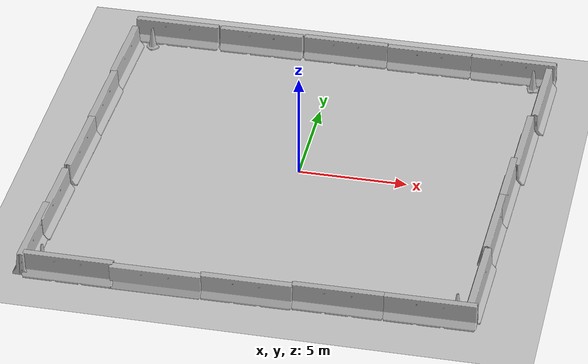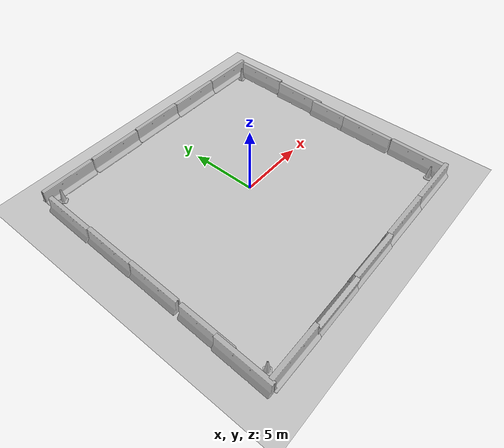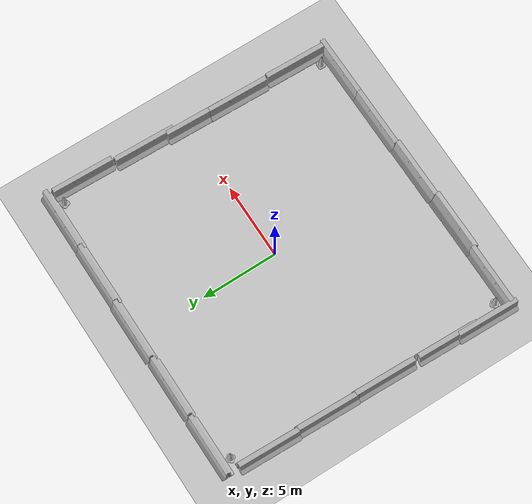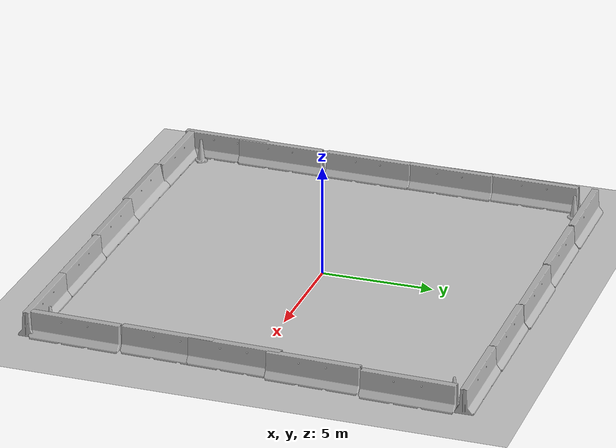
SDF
<sdf version="1.6">
 <world name="default">
  <light name="sun" type="directional">
   <pose>0 0 10 0 -0 0</pose>
   <diffuse>0.8 0.8 0.8 1</diffuse>
   <specular>0.2 0.2 0.2 1</specular>
   <attenuation>
    <range>1000</range>
    <constant>0.9</constant>
    <linear>0.01</linear>
    <quadratic>0.001</quadratic>
   </attenuation>
   <direction>-0.5 0.1 -0.9</direction>
  </light>
  <model name="ground_plane">
   <static>1</static>
   <link name="link">
    <collision name="collision">
     <geometry><plane><normal>0 0 1</normal><size>100 100</size></plane></geometry>
     <surface>
      <contact><collide_bitmask>65535</collide_bitmask></contact>
      <friction><ode><mu>100</mu><mu2>50</mu2></ode></friction>
     </surface>
    </collision>
    <visual name="visual">
     <cast_shadows>0</cast_shadows>
     <geometry><plane><normal>0 0 1</normal><size>100 100</size></plane></geometry>
     <material>
      <script><uri>file://media/materials/scripts/gazebo.material</uri><name>Gazebo/Grey</name></script>
     </material>
    </visual>
   </link>
  </model>
  <gravity>0 0 -9.8</gravity>
  <magnetic_field>6e-06 2.3e-05 -4.2e-05</magnetic_field>
  <atmosphere type="adiabatic"/>
  <physics name="default_physics" default="0" type="ode">
   <max_step_size>0.001</max_step_size>
   <real_time_factor>1</real_time_factor>
   <real_time_update_rate>1000</real_time_update_rate>
  </physics>
  <scene><ambient>0.4 0.4 0.4 1</ambient><background>0.7 0.7 0.7 1</background><shadows>1</shadows></scene>
  <audio><device>default</device></audio>
  <spherical_coordinates>
   <surface_model>EARTH_WGS84</surface_model>
   <latitude_deg>0</latitude_deg>
   <longitude_deg>0</longitude_deg>
   <elevation>0</elevation>
   <heading_deg>0</heading_deg>
  </spherical_coordinates>
  <model name="jersey_barrier">
   <static>1</static>
   <link name="link">
    <visual name="visual">
     <geometry><mesh><uri>model://jersey_barrier/meshes/jersey_barrier.dae</uri></mesh></geometry>
    </visual>
    <collision name="upright">
     <pose>0 0 0.5715 0 -0 0</pose>
     <geometry><box><size>4.06542 0.3063 1.143</size></box></geometry>
    </collision>
    <collision name="base">
     <pose>0 0 0.032258 0 -0 0</pose>
     <geometry><box><size>4.06542 0.8107 0.064516</size></box></geometry>
    </collision>
    <collision name="base2">
     <pose>0 0 0.1 0 -0 0</pose>
     <geometry><box><size>4.06542 0.65 0.1</size></box></geometry>
    </collision>
    <collision name="base3">
     <pose>0 0 0.2 0 -0 0</pose>
     <geometry><box><size>4.06542 0.5 0.1</size></box></geometry>
    </collision>
    <collision name="left-angle">
     <pose>0 -0.224 0.2401 0.9 -0 0</pose>
     <geometry><box><size>4.06542 0.5 0.064516</size></box></geometry>
    </collision>
    <collision name="right-angle">
     <pose>0 0.224 0.2401 -0.9 0 0</pose>
     <geometry><box><size>4.06542 0.5 0.064516</size></box></geometry>
    </collision>
   </link>
   <pose>-9.91803 2.78496 -0.000444 0 0.000222 -1.5949</pose>
  </model>
  <model name="jersey_barrier_clone">
   <static>1</static>
   <link name="link">
    <visual name="visual">
     <geometry><mesh><uri>model://jersey_barrier/meshes/jersey_barrier.dae</uri></mesh></geometry>
    </visual>
    <collision name="upright">
     <pose>0 0 0.5715 0 -0 0</pose>
     <geometry><box><size>4.06542 0.3063 1.143</size></box></geometry>
    </collision>
    <collision name="base">
     <pose>0 0 0.032258 0 -0 0</pose>
     <geometry><box><size>4.06542 0.8107 0.064516</size></box></geometry>
    </collision>
    <collision name="base2">
     <pose>0 0 0.1 0 -0 0</pose>
     <geometry><box><size>4.06542 0.65 0.1</size></box></geometry>
    </collision>
    <collision name="base3">
     <pose>0 0 0.2 0 -0 0</pose>
     <geometry><box><size>4.06542 0.5 0.1</size></box></geometry>
    </collision>
    <collision name="left-angle">
     <pose>0 -0.224 0.2401 0.9 -0 0</pose>
     <geometry><box><size>4.06542 0.5 0.064516</size></box></geometry>
    </collision>
    <collision name="right-angle">
     <pose>0 0.224 0.2401 -0.9 0 0</pose>
     <geometry><box><size>4.06542 0.5 0.064516</size></box></geometry>
    </collision>
   </link>
   <pose>-4.27894 -9.82924 -0.007857 -0.174297 0.000664 -3.13654</pose>
  </model>
  <model name="jersey_barrier_clone_0">
   <static>1</static>
   <link name="link">
    <visual name="visual">
     <geometry><mesh><uri>model://jersey_barrier/meshes/jersey_barrier.dae</uri></mesh></geometry>
    </visual>
    <collision name="upright">
     <pose>0 0 0.5715 0 -0 0</pose>
     <geometry><box><size>4.06542 0.3063 1.143</size></box></geometry>
    </collision>
    <collision name="base">
     <pose>0 0 0.032258 0 -0 0</pose>
     <geometry><box><size>4.06542 0.8107 0.064516</size></box></geometry>
    </collision>
    <collision name="base2">
     <pose>0 0 0.1 0 -0 0</pose>
     <geometry><box><size>4.06542 0.65 0.1</size></box></geometry>
    </collision>
    <collision name="base3">
     <pose>0 0 0.2 0 -0 0</pose>
     <geometry><box><size>4.06542 0.5 0.1</size></box></geometry>
    </collision>
    <collision name="left-angle">
     <pose>0 -0.224 0.2401 0.9 -0 0</pose>
     <geometry><box><size>4.06542 0.5 0.064516</size></box></geometry>
    </collision>
    <collision name="right-angle">
     <pose>0 0.224 0.2401 -0.9 0 0</pose>
     <geometry><box><size>4.06542 0.5 0.064516</size></box></geometry>
    </collision>
   </link>
   <pose>3.73083 -9.7443 -0.000445 0 -0.000222 0.00509</pose>
  </model>
  <model name="jersey_barrier_clone_1">
   <static>1</static>
   <link name="link">
    <visual name="visual">
     <geometry><mesh><uri>model://jersey_barrier/meshes/jersey_barrier.dae</uri></mesh></geometry>
    </visual>
    <collision name="upright">
     <pose>0 0 0.5715 0 -0 0</pose>
     <geometry><box><size>4.06542 0.3063 1.143</size></box></geometry>
    </collision>
    <collision name="base">
     <pose>0 0 0.032258 0 -0 0</pose>
     <geometry><box><size>4.06542 0.8107 0.064516</size></box></geometry>
    </collision>
    <collision name="base2">
     <pose>0 0 0.1 0 -0 0</pose>
     <geometry><box><size>4.06542 0.65 0.1</size></box></geometry>
    </collision>
    <collision name="base3">
     <pose>0 0 0.2 0 -0 0</pose>
     <geometry><box><size>4.06542 0.5 0.1</size></box></geometry>
    </collision>
    <collision name="left-angle">
     <pose>0 -0.224 0.2401 0.9 -0 0</pose>
     <geometry><box><size>4.06542 0.5 0.064516</size></box></geometry>
    </collision>
    <collision name="right-angle">
     <pose>0 0.224 0.2401 -0.9 0 0</pose>
     <geometry><box><size>4.06542 0.5 0.064516</size></box></geometry>
    </collision>
   </link>
   <pose>-0.274057 -9.78695 -0.002748 -0.087019 0.000444 -3.13651</pose>
  </model>
  <model name="jersey_barrier_clone_2">
   <static>1</static>
   <link name="link">
    <visual name="visual">
     <geometry><mesh><uri>model://jersey_barrier/meshes/jersey_barrier.dae</uri></mesh></geometry>
    </visual>
    <collision name="upright">
     <pose>0 0 0.5715 0 -0 0</pose>
     <geometry><box><size>4.06542 0.3063 1.143</size></box></geometry>
    </collision>
    <collision name="base">
     <pose>0 0 0.032258 0 -0 0</pose>
     <geometry><box><size>4.06542 0.8107 0.064516</size></box></geometry>
    </collision>
    <collision name="base2">
     <pose>0 0 0.1 0 -0 0</pose>
     <geometry><box><size>4.06542 0.65 0.1</size></box></geometry>
    </collision>
    <collision name="base3">
     <pose>0 0 0.2 0 -0 0</pose>
     <geometry><box><size>4.06542 0.5 0.1</size></box></geometry>
    </collision>
    <collision name="left-angle">
     <pose>0 -0.224 0.2401 0.9 -0 0</pose>
     <geometry><box><size>4.06542 0.5 0.064516</size></box></geometry>
    </collision>
    <collision name="right-angle">
     <pose>0 0.224 0.2401 -0.9 0 0</pose>
     <geometry><box><size>4.06542 0.5 0.064516</size></box></geometry>
    </collision>
   </link>
   <pose>7.73583 -9.72394 0 0 -0 0.005079</pose>
  </model>
  <model name="jersey_barrier_clone_3">
   <static>1</static>
   <link name="link">
    <visual name="visual">
     <geometry><mesh><uri>model://jersey_barrier/meshes/jersey_barrier.dae</uri></mesh></geometry>
    </visual>
    <collision name="upright">
     <pose>0 0 0.5715 0 -0 0</pose>
     <geometry><box><size>4.06542 0.3063 1.143</size></box></geometry>
    </collision>
    <collision name="base">
     <pose>0 0 0.032258 0 -0 0</pose>
     <geometry><box><size>4.06542 0.8107 0.064516</size></box></geometry>
    </collision>
    <collision name="base2">
     <pose>0 0 0.1 0 -0 0</pose>
     <geometry><box><size>4.06542 0.65 0.1</size></box></geometry>
    </collision>
    <collision name="base3">
     <pose>0 0 0.2 0 -0 0</pose>
     <geometry><box><size>4.06542 0.5 0.1</size></box></geometry>
    </collision>
    <collision name="left-angle">
     <pose>0 -0.224 0.2401 0.9 -0 0</pose>
     <geometry><box><size>4.06542 0.5 0.064516</size></box></geometry>
    </collision>
    <collision name="right-angle">
     <pose>0 0.224 0.2401 -0.9 0 0</pose>
     <geometry><box><size>4.06542 0.5 0.064516</size></box></geometry>
    </collision>
   </link>
   <pose>-9.88264 6.79032 -0 0 0 -1.5949</pose>
  </model>
  <model name="jersey_barrier_clone_4">
   <static>1</static>
   <link name="link">
    <visual name="visual">
     <geometry><mesh><uri>model://jersey_barrier/meshes/jersey_barrier.dae</uri></mesh></geometry>
    </visual>
    <collision name="upright">
     <pose>0 0 0.5715 0 -0 0</pose>
     <geometry><box><size>4.06542 0.3063 1.143</size></box></geometry>
    </collision>
    <collision name="base">
     <pose>0 0 0.032258 0 -0 0</pose>
     <geometry><box><size>4.06542 0.8107 0.064516</size></box></geometry>
    </collision>
    <collision name="base2">
     <pose>0 0 0.1 0 -0 0</pose>
     <geometry><box><size>4.06542 0.65 0.1</size></box></geometry>
    </collision>
    <collision name="base3">
     <pose>0 0 0.2 0 -0 0</pose>
     <geometry><box><size>4.06542 0.5 0.1</size></box></geometry>
    </collision>
    <collision name="left-angle">
     <pose>0 -0.224 0.2401 0.9 -0 0</pose>
     <geometry><box><size>4.06542 0.5 0.064516</size></box></geometry>
    </collision>
    <collision name="right-angle">
     <pose>0 0.224 0.2401 -0.9 0 0</pose>
     <geometry><box><size>4.06542 0.5 0.064516</size></box></geometry>
    </collision>
   </link>
   <pose>-7.90592 9.55444 0 0 -0 0</pose>
  </model>
  <model name="jersey_barrier_clone_5">
   <static>1</static>
   <link name="link">
    <visual name="visual">
     <geometry><mesh><uri>model://jersey_barrier/meshes/jersey_barrier.dae</uri></mesh></geometry>
    </visual>
    <collision name="upright">
     <pose>0 0 0.5715 0 -0 0</pose>
     <geometry><box><size>4.06542 0.3063 1.143</size></box></geometry>
    </collision>
    <collision name="base">
     <pose>0 0 0.032258 0 -0 0</pose>
     <geometry><box><size>4.06542 0.8107 0.064516</size></box></geometry>
    </collision>
    <collision name="base2">
     <pose>0 0 0.1 0 -0 0</pose>
     <geometry><box><size>4.06542 0.65 0.1</size></box></geometry>
    </collision>
    <collision name="base3">
     <pose>0 0 0.2 0 -0 0</pose>
     <geometry><box><size>4.06542 0.5 0.1</size></box></geometry>
    </collision>
    <collision name="left-angle">
     <pose>0 -0.224 0.2401 0.9 -0 0</pose>
     <geometry><box><size>4.06542 0.5 0.064516</size></box></geometry>
    </collision>
    <collision name="right-angle">
     <pose>0 0.224 0.2401 -0.9 0 0</pose>
     <geometry><box><size>4.06542 0.5 0.064516</size></box></geometry>
    </collision>
   </link>
   <pose>-3.76537 9.54052 0 0 -0 0</pose>
  </model>
  <model name="jersey_barrier_clone_6">
   <static>1</static>
   <link name="link">
    <visual name="visual">
     <geometry><mesh><uri>model://jersey_barrier/meshes/jersey_barrier.dae</uri></mesh></geometry>
    </visual>
    <collision name="upright">
     <pose>0 0 0.5715 0 -0 0</pose>
     <geometry><box><size>4.06542 0.3063 1.143</size></box></geometry>
    </collision>
    <collision name="base">
     <pose>0 0 0.032258 0 -0 0</pose>
     <geometry><box><size>4.06542 0.8107 0.064516</size></box></geometry>
    </collision>
    <collision name="base2">
     <pose>0 0 0.1 0 -0 0</pose>
     <geometry><box><size>4.06542 0.65 0.1</size></box></geometry>
    </collision>
    <collision name="base3">
     <pose>0 0 0.2 0 -0 0</pose>
     <geometry><box><size>4.06542 0.5 0.1</size></box></geometry>
    </collision>
    <collision name="left-angle">
     <pose>0 -0.224 0.2401 0.9 -0 0</pose>
     <geometry><box><size>4.06542 0.5 0.064516</size></box></geometry>
    </collision>
    <collision name="right-angle">
     <pose>0 0.224 0.2401 -0.9 0 0</pose>
     <geometry><box><size>4.06542 0.5 0.064516</size></box></geometry>
    </collision>
   </link>
   <pose>0.347506 9.59827 0 0 -0 0</pose>
  </model>
  <model name="jersey_barrier_clone_7">
   <static>1</static>
   <link name="link">
    <visual name="visual">
     <geometry><mesh><uri>model://jersey_barrier/meshes/jersey_barrier.dae</uri></mesh></geometry>
    </visual>
    <collision name="upright">
     <pose>0 0 0.5715 0 -0 0</pose>
     <geometry><box><size>4.06542 0.3063 1.143</size></box></geometry>
    </collision>
    <collision name="base">
     <pose>0 0 0.032258 0 -0 0</pose>
     <geometry><box><size>4.06542 0.8107 0.064516</size></box></geometry>
    </collision>
    <collision name="base2">
     <pose>0 0 0.1 0 -0 0</pose>
     <geometry><box><size>4.06542 0.65 0.1</size></box></geometry>
    </collision>
    <collision name="base3">
     <pose>0 0 0.2 0 -0 0</pose>
     <geometry><box><size>4.06542 0.5 0.1</size></box></geometry>
    </collision>
    <collision name="left-angle">
     <pose>0 -0.224 0.2401 0.9 -0 0</pose>
     <geometry><box><size>4.06542 0.5 0.064516</size></box></geometry>
    </collision>
    <collision name="right-angle">
     <pose>0 0.224 0.2401 -0.9 0 0</pose>
     <geometry><box><size>4.06542 0.5 0.064516</size></box></geometry>
    </collision>
   </link>
   <pose>4.40612 9.53908 0 0 -0 0</pose>
  </model>
  <model name="jersey_barrier_clone_8">
   <static>1</static>
   <link name="link">
    <visual name="visual">
     <geometry><mesh><uri>model://jersey_barrier/meshes/jersey_barrier.dae</uri></mesh></geometry>
    </visual>
    <collision name="upright">
     <pose>0 0 0.5715 0 -0 0</pose>
     <geometry><box><size>4.06542 0.3063 1.143</size></box></geometry>
    </collision>
    <collision name="base">
     <pose>0 0 0.032258 0 -0 0</pose>
     <geometry><box><size>4.06542 0.8107 0.064516</size></box></geometry>
    </collision>
    <collision name="base2">
     <pose>0 0 0.1 0 -0 0</pose>
     <geometry><box><size>4.06542 0.65 0.1</size></box></geometry>
    </collision>
    <collision name="base3">
     <pose>0 0 0.2 0 -0 0</pose>
     <geometry><box><size>4.06542 0.5 0.1</size></box></geometry>
    </collision>
    <collision name="left-angle">
     <pose>0 -0.224 0.2401 0.9 -0 0</pose>
     <geometry><box><size>4.06542 0.5 0.064516</size></box></geometry>
    </collision>
    <collision name="right-angle">
     <pose>0 0.224 0.2401 -0.9 0 0</pose>
     <geometry><box><size>4.06542 0.5 0.064516</size></box></geometry>
    </collision>
   </link>
   <pose>8.45529 9.51154 0 0 -0 0</pose>
  </model>
  <model name="jersey_barrier_clone_9">
   <static>1</static>
   <link name="link">
    <visual name="visual">
     <geometry><mesh><uri>model://jersey_barrier/meshes/jersey_barrier.dae</uri></mesh></geometry>
    </visual>
    <collision name="upright">
     <pose>0 0 0.5715 0 -0 0</pose>
     <geometry><box><size>4.06542 0.3063 1.143</size></box></geometry>
    </collision>
    <collision name="base">
     <pose>0 0 0.032258 0 -0 0</pose>
     <geometry><box><size>4.06542 0.8107 0.064516</size></box></geometry>
    </collision>
    <collision name="base2">
     <pose>0 0 0.1 0 -0 0</pose>
     <geometry><box><size>4.06542 0.65 0.1</size></box></geometry>
    </collision>
    <collision name="base3">
     <pose>0 0 0.2 0 -0 0</pose>
     <geometry><box><size>4.06542 0.5 0.1</size></box></geometry>
    </collision>
    <collision name="left-angle">
     <pose>0 -0.224 0.2401 0.9 -0 0</pose>
     <geometry><box><size>4.06542 0.5 0.064516</size></box></geometry>
    </collision>
    <collision name="right-angle">
     <pose>0 0.224 0.2401 -0.9 0 0</pose>
     <geometry><box><size>4.06542 0.5 0.064516</size></box></geometry>
    </collision>
   </link>
   <pose>-8.20158 -9.87333 0 0 -0 0</pose>
  </model>
  <model name="jersey_barrier_clone_10">
   <static>1</static>
   <link name="link">
    <visual name="visual">
     <geometry><mesh><uri>model://jersey_barrier/meshes/jersey_barrier.dae</uri></mesh></geometry>
    </visual>
    <collision name="upright">
     <pose>0 0 0.5715 0 -0 0</pose>
     <geometry><box><size>4.06542 0.3063 1.143</size></box></geometry>
    </collision>
    <collision name="base">
     <pose>0 0 0.032258 0 -0 0</pose>
     <geometry><box><size>4.06542 0.8107 0.064516</size></box></geometry>
    </collision>
    <collision name="base2">
     <pose>0 0 0.1 0 -0 0</pose>
     <geometry><box><size>4.06542 0.65 0.1</size></box></geometry>
    </collision>
    <collision name="base3">
     <pose>0 0 0.2 0 -0 0</pose>
     <geometry><box><size>4.06542 0.5 0.1</size></box></geometry>
    </collision>
    <collision name="left-angle">
     <pose>0 -0.224 0.2401 0.9 -0 0</pose>
     <geometry><box><size>4.06542 0.5 0.064516</size></box></geometry>
    </collision>
    <collision name="right-angle">
     <pose>0 0.224 0.2401 -0.9 0 0</pose>
     <geometry><box><size>4.06542 0.5 0.064516</size></box></geometry>
    </collision>
   </link>
   <pose>9.51428 -7.56983 -0.002198 0 0.000222 -1.5949</pose>
  </model>
  <model name="jersey_barrier_clone_11">
   <static>1</static>
   <link name="link">
    <visual name="visual">
     <geometry><mesh><uri>model://jersey_barrier/meshes/jersey_barrier.dae</uri></mesh></geometry>
    </visual>
    <collision name="upright">
     <pose>0 0 0.5715 0 -0 0</pose>
     <geometry><box><size>4.06542 0.3063 1.143</size></box></geometry>
    </collision>
    <collision name="base">
     <pose>0 0 0.032258 0 -0 0</pose>
     <geometry><box><size>4.06542 0.8107 0.064516</size></box></geometry>
    </collision>
    <collision name="base2">
     <pose>0 0 0.1 0 -0 0</pose>
     <geometry><box><size>4.06542 0.65 0.1</size></box></geometry>
    </collision>
    <collision name="base3">
     <pose>0 0 0.2 0 -0 0</pose>
     <geometry><box><size>4.06542 0.5 0.1</size></box></geometry>
    </collision>
    <collision name="left-angle">
     <pose>0 -0.224 0.2401 0.9 -0 0</pose>
     <geometry><box><size>4.06542 0.5 0.064516</size></box></geometry>
    </collision>
    <collision name="right-angle">
     <pose>0 0.224 0.2401 -0.9 0 0</pose>
     <geometry><box><size>4.06542 0.5 0.064516</size></box></geometry>
    </collision>
   </link>
   <pose>-9.97822 -1.12582 -0.000444 0 0.000222 -1.5949</pose>
  </model>
  <model name="jersey_barrier_clone_12">
   <static>1</static>
   <link name="link">
    <visual name="visual">
     <geometry><mesh><uri>model://jersey_barrier/meshes/jersey_barrier.dae</uri></mesh></geometry>
    </visual>
    <collision name="upright">
     <pose>0 0 0.5715 0 -0 0</pose>
     <geometry><box><size>4.06542 0.3063 1.143</size></box></geometry>
    </collision>
    <collision name="base">
     <pose>0 0 0.032258 0 -0 0</pose>
     <geometry><box><size>4.06542 0.8107 0.064516</size></box></geometry>
    </collision>
    <collision name="base2">
     <pose>0 0 0.1 0 -0 0</pose>
     <geometry><box><size>4.06542 0.65 0.1</size></box></geometry>
    </collision>
    <collision name="base3">
     <pose>0 0 0.2 0 -0 0</pose>
     <geometry><box><size>4.06542 0.5 0.1</size></box></geometry>
    </collision>
    <collision name="left-angle">
     <pose>0 -0.224 0.2401 0.9 -0 0</pose>
     <geometry><box><size>4.06542 0.5 0.064516</size></box></geometry>
    </collision>
    <collision name="right-angle">
     <pose>0 0.224 0.2401 -0.9 0 0</pose>
     <geometry><box><size>4.06542 0.5 0.064516</size></box></geometry>
    </collision>
   </link>
   <pose>-10.0969 -5.4132 -0.000444 0 0.000222 -1.5949</pose>
  </model>
  <model name="jersey_barrier_clone_13">
   <static>1</static>
   <link name="link">
    <visual name="visual">
     <geometry><mesh><uri>model://jersey_barrier/meshes/jersey_barrier.dae</uri></mesh></geometry>
    </visual>
    <collision name="upright">
     <pose>0 0 0.5715 0 -0 0</pose>
     <geometry><box><size>4.06542 0.3063 1.143</size></box></geometry>
    </collision>
    <collision name="base">
     <pose>0 0 0.032258 0 -0 0</pose>
     <geometry><box><size>4.06542 0.8107 0.064516</size></box></geometry>
    </collision>
    <collision name="base2">
     <pose>0 0 0.1 0 -0 0</pose>
     <geometry><box><size>4.06542 0.65 0.1</size></box></geometry>
    </collision>
    <collision name="base3">
     <pose>0 0 0.2 0 -0 0</pose>
     <geometry><box><size>4.06542 0.5 0.1</size></box></geometry>
    </collision>
    <collision name="left-angle">
     <pose>0 -0.224 0.2401 0.9 -0 0</pose>
     <geometry><box><size>4.06542 0.5 0.064516</size></box></geometry>
    </collision>
    <collision name="right-angle">
     <pose>0 0.224 0.2401 -0.9 0 0</pose>
     <geometry><box><size>4.06542 0.5 0.064516</size></box></geometry>
    </collision>
   </link>
   <pose>9.53439 -3.45107 -0.000444 0 0.000222 -1.5949</pose>
  </model>
  <model name="jersey_barrier_clone_14">
   <static>1</static>
   <link name="link">
    <visual name="visual">
     <geometry><mesh><uri>model://jersey_barrier/meshes/jersey_barrier.dae</uri></mesh></geometry>
    </visual>
    <collision name="upright">
     <pose>0 0 0.5715 0 -0 0</pose>
     <geometry><box><size>4.06542 0.3063 1.143</size></box></geometry>
    </collision>
    <collision name="base">
     <pose>0 0 0.032258 0 -0 0</pose>
     <geometry><box><size>4.06542 0.8107 0.064516</size></box></geometry>
    </collision>
    <collision name="base2">
     <pose>0 0 0.1 0 -0 0</pose>
     <geometry><box><size>4.06542 0.65 0.1</size></box></geometry>
    </collision>
    <collision name="base3">
     <pose>0 0 0.2 0 -0 0</pose>
     <geometry><box><size>4.06542 0.5 0.1</size></box></geometry>
    </collision>
    <collision name="left-angle">
     <pose>0 -0.224 0.2401 0.9 -0 0</pose>
     <geometry><box><size>4.06542 0.5 0.064516</size></box></geometry>
    </collision>
    <collision name="right-angle">
     <pose>0 0.224 0.2401 -0.9 0 0</pose>
     <geometry><box><size>4.06542 0.5 0.064516</size></box></geometry>
    </collision>
   </link>
   <pose>10.1448 7.11225 -0.000444 0 0.000222 -1.5949</pose>
  </model>
  <model name="jersey_barrier_clone_15">
   <static>1</static>
   <link name="link">
    <visual name="visual">
     <geometry><mesh><uri>model://jersey_barrier/meshes/jersey_barrier.dae</uri></mesh></geometry>
    </visual>
    <collision name="upright">
     <pose>0 0 0.5715 0 -0 0</pose>
     <geometry><box><size>4.06542 0.3063 1.143</size></box></geometry>
    </collision>
    <collision name="base">
     <pose>0 0 0.032258 0 -0 0</pose>
     <geometry><box><size>4.06542 0.8107 0.064516</size></box></geometry>
    </collision>
    <collision name="base2">
     <pose>0 0 0.1 0 -0 0</pose>
     <geometry><box><size>4.06542 0.65 0.1</size></box></geometry>
    </collision>
    <collision name="base3">
     <pose>0 0 0.2 0 -0 0</pose>
     <geometry><box><size>4.06542 0.5 0.1</size></box></geometry>
    </collision>
    <collision name="left-angle">
     <pose>0 -0.224 0.2401 0.9 -0 0</pose>
     <geometry><box><size>4.06542 0.5 0.064516</size></box></geometry>
    </collision>
    <collision name="right-angle">
     <pose>0 0.224 0.2401 -0.9 0 0</pose>
     <geometry><box><size>4.06542 0.5 0.064516</size></box></geometry>
    </collision>
   </link>
   <pose>9.86044 2.97437 -0.000444 0 0.000222 -1.5949</pose>
  </model>
  <model name="jersey_barrier_clone_16">
   <static>1</static>
   <link name="link">
    <visual name="visual">
     <geometry><mesh><uri>model://jersey_barrier/meshes/jersey_barrier.dae</uri></mesh></geometry>
    </visual>
    <collision name="upright">
     <pose>0 0 0.5715 0 -0 0</pose>
     <geometry><box><size>4.06542 0.3063 1.143</size></box></geometry>
    </collision>
    <collision name="base">
     <pose>0 0 0.032258 0 -0 0</pose>
     <geometry><box><size>4.06542 0.8107 0.064516</size></box></geometry>
    </collision>
    <collision name="base2">
     <pose>0 0 0.1 0 -0 0</pose>
     <geometry><box><size>4.06542 0.65 0.1</size></box></geometry>
    </collision>
    <collision name="base3">
     <pose>0 0 0.2 0 -0 0</pose>
     <geometry><box><size>4.06542 0.5 0.1</size></box></geometry>
    </collision>
    <collision name="left-angle">
     <pose>0 -0.224 0.2401 0.9 -0 0</pose>
     <geometry><box><size>4.06542 0.5 0.064516</size></box></geometry>
    </collision>
    <collision name="right-angle">
     <pose>0 0.224 0.2401 -0.9 0 0</pose>
     <geometry><box><size>4.06542 0.5 0.064516</size></box></geometry>
    </collision>
   </link>
   <pose>9.61689 -0.507954 -0.000444 0 0.000222 -1.5949</pose>
  </model>
  <model name="jersey_barrier_clone_17">
   <static>1</static>
   <link name="link">
    <visual name="visual">
     <geometry><mesh><uri>model://jersey_barrier/meshes/jersey_barrier.dae</uri></mesh></geometry>
    </visual>
    <collision name="upright">
     <pose>0 0 0.5715 0 -0 0</pose>
     <geometry><box><size>4.06542 0.3063 1.143</size></box></geometry>
    </collision>
    <collision name="base">
     <pose>0 0 0.032258 0 -0 0</pose>
     <geometry><box><size>4.06542 0.8107 0.064516</size></box></geometry>
    </collision>
    <collision name="base2">
     <pose>0 0 0.1 0 -0 0</pose>
     <geometry><box><size>4.06542 0.65 0.1</size></box></geometry>
    </collision>
    <collision name="base3">
     <pose>0 0 0.2 0 -0 0</pose>
     <geometry><box><size>4.06542 0.5 0.1</size></box></geometry>
    </collision>
    <collision name="left-angle">
     <pose>0 -0.224 0.2401 0.9 -0 0</pose>
     <geometry><box><size>4.06542 0.5 0.064516</size></box></geometry>
    </collision>
    <collision name="right-angle">
     <pose>0 0.224 0.2401 -0.9 0 0</pose>
     <geometry><box><size>4.06542 0.5 0.064516</size></box></geometry>
    </collision>
   </link>
   <pose>-10.2406 -8.12859 -0.000444 0 0.000222 -1.5949</pose>
  </model>
  <model name="Construction Cone">
   <link name="link">
    <collision name="collision">
     <geometry>
      <mesh><scale>10 10 10</scale><uri>model://construction_cone/meshes/construction_cone.dae</uri></mesh>
     </geometry>
    </collision>
    <visual name="visual">
     <geometry>
      <mesh><scale>10 10 10</scale><uri>model://construction_cone/meshes/construction_cone.dae</uri></mesh>
     </geometry>
    </visual>
    <inertial>
     <inertia><ixx>1</ixx><ixy>0</ixy><ixz>0</ixz><iyy>1</iyy><iyz>0</iyz><izz>1</izz></inertia>
     <mass>1</mass>
    </inertial>
   </link>
   <pose>-9.02014 8.84821 -0 0 0 -0.840808</pose>
  </model>
  <model name="Construction Cone_clone">
   <link name="link">
    <collision name="collision">
     <geometry>
      <mesh><scale>10 10 10</scale><uri>model://construction_cone/meshes/construction_cone.dae</uri></mesh>
     </geometry>
    </collision>
    <visual name="visual">
     <geometry>
      <mesh><scale>10 10 10</scale><uri>model://construction_cone/meshes/construction_cone.dae</uri></mesh>
     </geometry>
    </visual>
    <inertial>
     <inertia><ixx>1</ixx><ixy>0</ixy><ixz>0</ixz><iyy>1</iyy><iyz>0</iyz><izz>1</izz></inertia>
     <mass>1</mass>
    </inertial>
   </link>
   <pose>9.48808 8.81706 -0 0 0 -1.28899</pose>
  </model>
  <model name="Construction Cone_clone_0">
   <link name="link">
    <collision name="collision">
     <geometry>
      <mesh><scale>10 10 10</scale><uri>model://construction_cone/meshes/construction_cone.dae</uri></mesh>
     </geometry>
    </collision>
    <visual name="visual">
     <geometry>
      <mesh><scale>10 10 10</scale><uri>model://construction_cone/meshes/construction_cone.dae</uri></mesh>
     </geometry>
    </visual>
    <inertial>
     <inertia><ixx>1</ixx><ixy>0</ixy><ixz>0</ixz><iyy>1</iyy><iyz>0</iyz><izz>1</izz></inertia>
     <mass>1</mass>
    </inertial>
   </link>
   <pose>8.78771 -9.02665 -0 0 -0 -1.5913</pose>
  </model>
  <model name="Construction Cone_clone_1">
   <link name="link">
    <collision name="collision">
     <geometry>
      <mesh><scale>10 10 10</scale><uri>model://construction_cone/meshes/construction_cone.dae</uri></mesh>
     </geometry>
    </collision>
    <visual name="visual">
     <geometry>
      <mesh><scale>10 10 10</scale><uri>model://construction_cone/meshes/construction_cone.dae</uri></mesh>
     </geometry>
    </visual>
    <inertial>
     <inertia><ixx>1</ixx><ixy>0</ixy><ixz>0</ixz><iyy>1</iyy><iyz>0</iyz><izz>1</izz></inertia>
     <mass>1</mass>
    </inertial>
   </link>
   <pose>-9.57244 -9.17188 -0.00162 -0.001484 -0.00096 -0.897264</pose>
  </model>
 </world>
</sdf>
